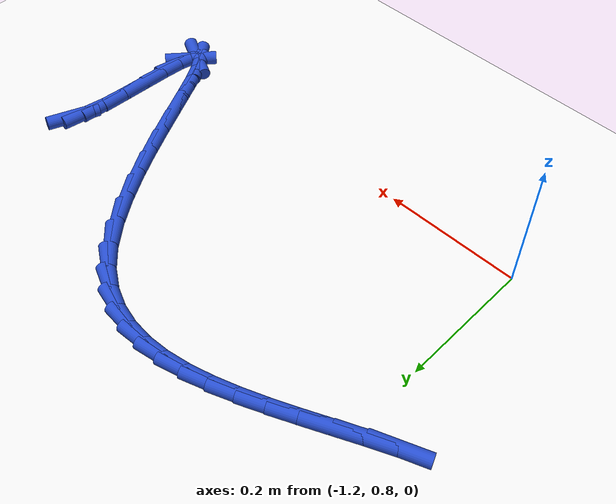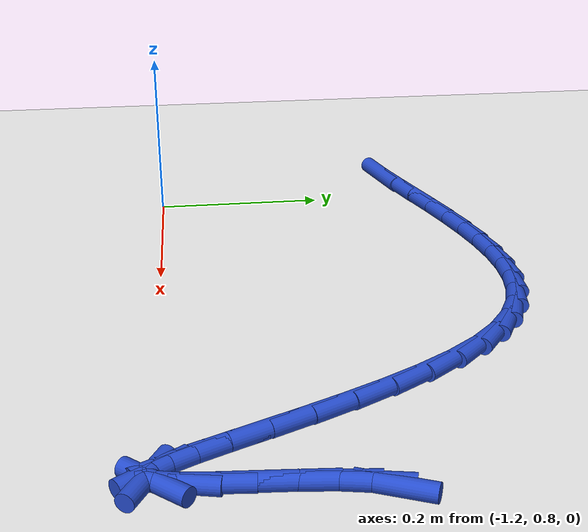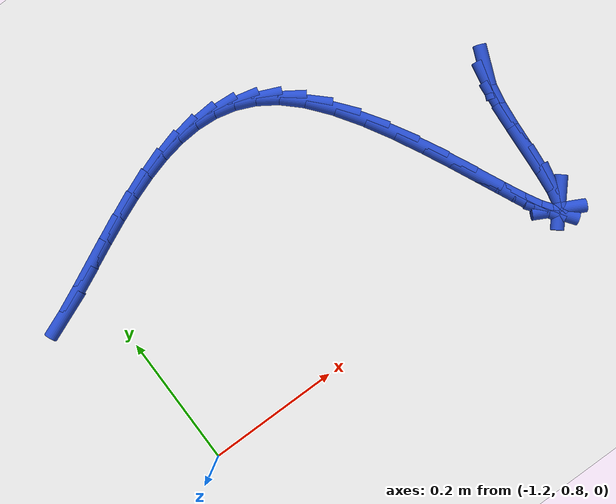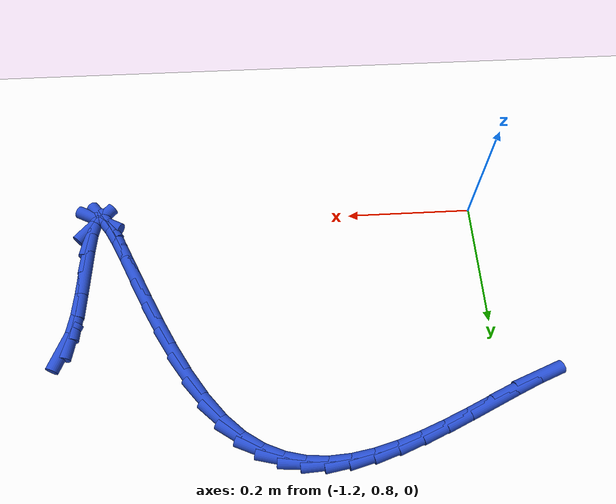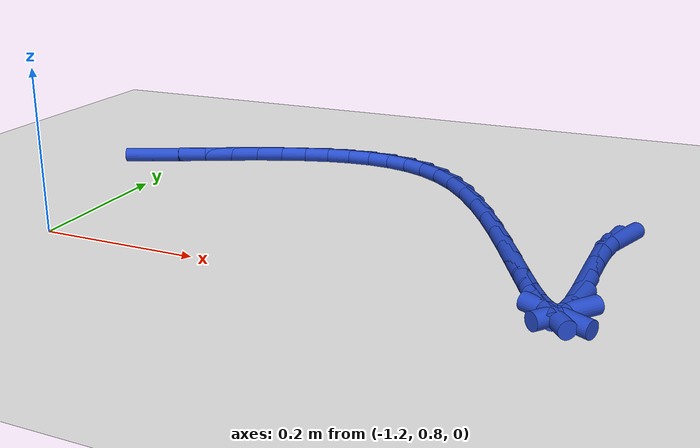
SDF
<sdf version="1.6">
 <world name="default">
  <model name="ground_plane">
   <static>1</static>
   <link name="link">
    <collision name="collision">
     <geometry><plane><normal>0 0 1</normal><size>100 100</size></plane></geometry>
     <surface><friction><ode><mu>100</mu><mu2>50</mu2></ode></friction></surface>
    </collision>
    <visual name="visual">
     <cast_shadows>0</cast_shadows>
     <geometry><plane><normal>0 0 1</normal><size>100 100</size></plane></geometry>
     <material>
      <script><uri>file://media/materials/scripts/gazebo.material</uri><name>Gazebo/WhiteGlow</name></script>
     </material>
    </visual>
   </link>
  </model>
  <model name="line">
   <link name="link_35">
    <pose>-0.5582150459572917 1.0157562047690334 0.01 0 1.57 1.1843040212507043</pose>
    <collision name="collision">
     <geometry><cylinder><radius>0.01</radius><length>0.08</length></cylinder></geometry>
    </collision>
    <visual name="visual">
     <material>
      <script><name>Gazebo/Blue</name><uri>file://media/materials/scripts/gazebo.material</uri></script>
     </material>
     <geometry><cylinder><radius>0.01</radius><length>0.08</length></cylinder></geometry>
    </visual>
   </link>
   <link name="link_36">
    <pose>-0.5662896560022819 0.9959149388131334 0.01 0 1.57 1.3959791009258045</pose>
    <collision name="collision">
     <geometry><cylinder><radius>0.01</radius><length>0.08</length></cylinder></geometry>
    </collision>
    <visual name="visual">
     <material>
      <script><name>Gazebo/Blue</name><uri>file://media/materials/scripts/gazebo.material</uri></script>
     </material>
     <geometry><cylinder><radius>0.01</radius><length>0.08</length></cylinder></geometry>
    </visual>
   </link>
   <link name="link_37">
    <pose>-0.5715789596082179 0.9659675967618204 0.01 0 1.57 1.4814861734477431</pose>
    <collision name="collision">
     <geometry><cylinder><radius>0.01</radius><length>0.08</length></cylinder></geometry>
    </collision>
    <visual name="visual">
     <material>
      <script><name>Gazebo/Blue</name><uri>file://media/materials/scripts/gazebo.material</uri></script>
     </material>
     <geometry><cylinder><radius>0.01</radius><length>0.08</length></cylinder></geometry>
    </visual>
   </link>
   <link name="link_38">
    <pose>-0.5748460427660054 0.9294835913321247 0.01 0 1.57 1.5154804421000168</pose>
    <collision name="collision">
     <geometry><cylinder><radius>0.01</radius><length>0.08</length></cylinder></geometry>
    </collision>
    <visual name="visual">
     <material>
      <script><name>Gazebo/Blue</name><uri>file://media/materials/scripts/gazebo.material</uri></script>
     </material>
     <geometry><cylinder><radius>0.01</radius><length>0.08</length></cylinder></geometry>
    </visual>
   </link>
   <link name="link_39">
    <pose>-0.5769957291643972 0.8906612278775544 0.01 0 1.57 1.518436579236036</pose>
    <collision name="collision">
     <geometry><cylinder><radius>0.01</radius><length>0.08</length></cylinder></geometry>
    </collision>
    <visual name="visual">
     <material>
      <script><name>Gazebo/Blue</name><uri>file://media/materials/scripts/gazebo.material</uri></script>
     </material>
     <geometry><cylinder><radius>0.01</radius><length>0.08</length></cylinder></geometry>
    </visual>
   </link>
   <link name="link_40">
    <pose>-0.5789328424921457 0.8536988117516164 0.01 0 1.57 1.4859195148842421</pose>
    <collision name="collision">
     <geometry><cylinder><radius>0.01</radius><length>0.08</length></cylinder></geometry>
    </collision>
    <visual name="visual">
     <material>
      <script><name>Gazebo/Blue</name><uri>file://media/materials/scripts/gazebo.material</uri></script>
     </material>
     <geometry><cylinder><radius>0.01</radius><length>0.08</length></cylinder></geometry>
    </visual>
   </link>
   <link name="link_41">
    <pose>-0.5815622064380038 0.8227946483078182 0.01 0 1.57 1.3689119356502872</pose>
    <collision name="collision">
     <geometry><cylinder><radius>0.01</radius><length>0.08</length></cylinder></geometry>
    </collision>
    <visual name="visual">
     <material>
      <script><name>Gazebo/Blue</name><uri>file://media/materials/scripts/gazebo.material</uri></script>
     </material>
     <geometry><cylinder><radius>0.01</radius><length>0.08</length></cylinder></geometry>
    </visual>
   </link>
   <link name="link_42">
    <pose>-0.5857884452191734 0.8021458728621471 0.01 0 1.57 0.8580099437129778</pose>
    <collision name="collision">
     <geometry><cylinder><radius>0.01</radius><length>0.08</length></cylinder></geometry>
    </collision>
    <visual name="visual">
     <material>
      <script><name>Gazebo/Blue</name><uri>file://media/materials/scripts/gazebo.material</uri></script>
     </material>
     <geometry><cylinder><radius>0.01</radius><length>0.08</length></cylinder></geometry>
    </visual>
   </link>
   <link name="link_43">
    <pose>-0.5922901960859644 0.7946240520996425 0.01 0 1.57 -0.4823884685321903</pose>
    <collision name="collision">
     <geometry><cylinder><radius>0.01</radius><length>0.08</length></cylinder></geometry>
    </collision>
    <visual name="visual">
     <material>
      <script><name>Gazebo/Blue</name><uri>file://media/materials/scripts/gazebo.material</uri></script>
     </material>
     <geometry><cylinder><radius>0.01</radius><length>0.08</length></cylinder></geometry>
    </visual>
   </link>
   <link name="link_44">
    <pose>-0.601086214118704 0.799230090973471 0.01 0 1.57 -0.93953289880586</pose>
    <collision name="collision">
     <geometry><cylinder><radius>0.01</radius><length>0.08</length></cylinder></geometry>
    </collision>
    <visual name="visual">
     <material>
      <script><name>Gazebo/Blue</name><uri>file://media/materials/scripts/gazebo.material</uri></script>
     </material>
     <geometry><cylinder><radius>0.01</radius><length>0.08</length></cylinder></geometry>
    </visual>
   </link>
   <link name="link_45">
    <pose>-0.6120754555692078 0.8142621921027499 0.01 0 1.57 -1.0674549173226022</pose>
    <collision name="collision">
     <geometry><cylinder><radius>0.01</radius><length>0.08</length></cylinder></geometry>
    </collision>
    <visual name="visual">
     <material>
      <script><name>Gazebo/Blue</name><uri>file://media/materials/scripts/gazebo.material</uri></script>
     </material>
     <geometry><cylinder><radius>0.01</radius><length>0.08</length></cylinder></geometry>
    </visual>
   </link>
   <link name="link_46">
    <pose>-0.6251568766892915 0.8380185581065956 0.01 0 1.57 -1.1154183656569396</pose>
    <collision name="collision">
     <geometry><cylinder><radius>0.01</radius><length>0.08</length></cylinder></geometry>
    </collision>
    <visual name="visual">
     <material>
      <script><name>Gazebo/Blue</name><uri>file://media/materials/scripts/gazebo.material</uri></script>
     </material>
     <geometry><cylinder><radius>0.01</radius><length>0.08</length></cylinder></geometry>
    </visual>
   </link>
   <link name="link_47">
    <pose>-0.6402294337307702 0.8687973916041248 0.01 0 1.57 -1.131528865879488</pose>
    <collision name="collision">
     <geometry><cylinder><radius>0.01</radius><length>0.08</length></cylinder></geometry>
    </collision>
    <visual name="visual">
     <material>
      <script><name>Gazebo/Blue</name><uri>file://media/materials/scripts/gazebo.material</uri></script>
     </material>
     <geometry><cylinder><radius>0.01</radius><length>0.08</length></cylinder></geometry>
    </visual>
   </link>
   <link name="link_48">
    <pose>-0.6571920829454594 0.9048968952144543 0.01 0 1.57 -1.1297033609013452</pose>
    <collision name="collision">
     <geometry><cylinder><radius>0.01</radius><length>0.08</length></cylinder></geometry>
    </collision>
    <visual name="visual">
     <material>
      <script><name>Gazebo/Blue</name><uri>file://media/materials/scripts/gazebo.material</uri></script>
     </material>
     <geometry><cylinder><radius>0.01</radius><length>0.08</length></cylinder></geometry>
    </visual>
   </link>
   <link name="link_49">
    <pose>-0.6759437805851745 0.9446152715567006 0.01 0 1.57 -1.1144385572703608</pose>
    <collision name="collision">
     <geometry><cylinder><radius>0.01</radius><length>0.08</length></cylinder></geometry>
    </collision>
    <visual name="visual">
     <material>
      <script><name>Gazebo/Blue</name><uri>file://media/materials/scripts/gazebo.material</uri></script>
     </material>
     <geometry><cylinder><radius>0.01</radius><length>0.08</length></cylinder></geometry>
    </visual>
   </link>
   <link name="link_50">
    <pose>-0.6963834829017308 0.9862507232499802 0.01 0 1.57 -1.0863190821722675</pose>
    <collision name="collision">
     <geometry><cylinder><radius>0.01</radius><length>0.08</length></cylinder></geometry>
    </collision>
    <visual name="visual">
     <material>
      <script><name>Gazebo/Blue</name><uri>file://media/materials/scripts/gazebo.material</uri></script>
     </material>
     <geometry><cylinder><radius>0.01</radius><length>0.08</length></cylinder></geometry>
    </visual>
   </link>
   <link name="link_51">
    <pose>-0.7184101461469438 1.0281014529134096 0.01 0 1.57 -1.0433359493110503</pose>
    <collision name="collision">
     <geometry><cylinder><radius>0.01</radius><length>0.08</length></cylinder></geometry>
    </collision>
    <visual name="visual">
     <material>
      <script><name>Gazebo/Blue</name><uri>file://media/materials/scripts/gazebo.material</uri></script>
     </material>
     <geometry><cylinder><radius>0.01</radius><length>0.08</length></cylinder></geometry>
    </visual>
   </link>
   <link name="link_52">
    <pose>-0.7419227265726289 1.0684656631661062 0.01 0 1.57 -0.9806825858684807</pose>
    <collision name="collision">
     <geometry><cylinder><radius>0.01</radius><length>0.08</length></cylinder></geometry>
    </collision>
    <visual name="visual">
     <material>
      <script><name>Gazebo/Blue</name><uri>file://media/materials/scripts/gazebo.material</uri></script>
     </material>
     <geometry><cylinder><radius>0.01</radius><length>0.08</length></cylinder></geometry>
    </visual>
   </link>
   <link name="link_53">
    <pose>-0.7668201804306017 1.1056415566271864 0.01 0 1.57 -0.8894303683942326</pose>
    <collision name="collision">
     <geometry><cylinder><radius>0.01</radius><length>0.08</length></cylinder></geometry>
    </collision>
    <visual name="visual">
     <material>
      <script><name>Gazebo/Blue</name><uri>file://media/materials/scripts/gazebo.material</uri></script>
     </material>
     <geometry><cylinder><radius>0.01</radius><length>0.08</length></cylinder></geometry>
    </visual>
   </link>
   <link name="link_54">
    <pose>-0.7930014639726775 1.1379273359157664 0.01 0 1.57 -0.7563948264282714</pose>
    <collision name="collision">
     <geometry><cylinder><radius>0.01</radius><length>0.08</length></cylinder></geometry>
    </collision>
    <visual name="visual">
     <material>
      <script><name>Gazebo/Blue</name><uri>file://media/materials/scripts/gazebo.material</uri></script>
     </material>
     <geometry><cylinder><radius>0.01</radius><length>0.08</length></cylinder></geometry>
    </visual>
   </link>
   <link name="link_55">
    <pose>-0.8203677303846755 1.163750498682871 0.01 0 1.57 -0.5914955888662017</pose>
    <collision name="collision">
     <geometry><cylinder><radius>0.01</radius><length>0.08</length></cylinder></geometry>
    </collision>
    <visual name="visual">
     <material>
      <script><name>Gazebo/Blue</name><uri>file://media/materials/scripts/gazebo.material</uri></script>
     </material>
     <geometry><cylinder><radius>0.01</radius><length>0.08</length></cylinder></geometry>
    </visual>
   </link>
   <link name="link_56">
    <pose>-0.8488428914824494 1.1828779445785118 0.01 0 1.57 -0.4145488062492456</pose>
    <collision name="collision">
     <geometry><cylinder><radius>0.01</radius><length>0.08</length></cylinder></geometry>
    </collision>
    <visual name="visual">
     <material>
      <script><name>Gazebo/Blue</name><uri>file://media/materials/scripts/gazebo.material</uri></script>
     </material>
     <geometry><cylinder><radius>0.01</radius><length>0.08</length></cylinder></geometry>
    </visual>
   </link>
   <link name="link_57">
    <pose>-0.8783643211797995 1.1958688512093798 0.01 0 1.57 -0.23872295142183042</pose>
    <collision name="collision">
     <geometry><cylinder><radius>0.01</radius><length>0.08</length></cylinder></geometry>
    </collision>
    <visual name="visual">
     <material>
      <script><name>Gazebo/Blue</name><uri>file://media/materials/scripts/gazebo.material</uri></script>
     </material>
     <geometry><cylinder><radius>0.01</radius><length>0.08</length></cylinder></geometry>
    </visual>
   </link>
   <link name="link_58">
    <pose>-0.9088695687757763 1.2032927180404345 0.01 0 1.57 -0.07705324757670078</pose>
    <collision name="collision">
     <geometry><cylinder><radius>0.01</radius><length>0.08</length></cylinder></geometry>
    </collision>
    <visual name="visual">
     <material>
      <script><name>Gazebo/Blue</name><uri>file://media/materials/scripts/gazebo.material</uri></script>
     </material>
     <geometry><cylinder><radius>0.01</radius><length>0.08</length></cylinder></geometry>
    </visual>
   </link>
   <link name="link_59">
    <pose>-0.9402961835694289 1.2057190445366324 0.01 0 1.57 0.06192109284528416</pose>
    <collision name="collision">
     <geometry><cylinder><radius>0.01</radius><length>0.08</length></cylinder></geometry>
    </collision>
    <visual name="visual">
     <material>
      <script><name>Gazebo/Blue</name><uri>file://media/materials/scripts/gazebo.material</uri></script>
     </material>
     <geometry><cylinder><radius>0.01</radius><length>0.08</length></cylinder></geometry>
    </visual>
   </link>
   <link name="link_60">
    <pose>-0.9725817148598082 1.203717330162931 0.01 0 1.57 0.17532456697047252</pose>
    <collision name="collision">
     <geometry><cylinder><radius>0.01</radius><length>0.08</length></cylinder></geometry>
    </collision>
    <visual name="visual">
     <material>
      <script><name>Gazebo/Blue</name><uri>file://media/materials/scripts/gazebo.material</uri></script>
     </material>
     <geometry><cylinder><radius>0.01</radius><length>0.08</length></cylinder></geometry>
    </visual>
   </link>
   <link name="link_61">
    <pose>-1.005663711945963 1.1978570743842876 0.01 0 1.57 0.264234743004453</pose>
    <collision name="collision">
     <geometry><cylinder><radius>0.01</radius><length>0.08</length></cylinder></geometry>
    </collision>
    <visual name="visual">
     <material>
      <script><name>Gazebo/Blue</name><uri>file://media/materials/scripts/gazebo.material</uri></script>
     </material>
     <geometry><cylinder><radius>0.01</radius><length>0.08</length></cylinder></geometry>
    </visual>
   </link>
   <link name="link_62">
    <pose>-1.0394797241269431 1.1887077766656597 0.01 0 1.57 0.3314522249867367</pose>
    <collision name="collision">
     <geometry><cylinder><radius>0.01</radius><length>0.08</length></cylinder></geometry>
    </collision>
    <visual name="visual">
     <material>
      <script><name>Gazebo/Blue</name><uri>file://media/materials/scripts/gazebo.material</uri></script>
     </material>
     <geometry><cylinder><radius>0.01</radius><length>0.08</length></cylinder></geometry>
    </visual>
   </link>
   <link name="link_63">
    <pose>-1.0739673007017994 1.1768389364720049 0.01 0 1.57 0.38002011572774397</pose>
    <collision name="collision">
     <geometry><cylinder><radius>0.01</radius><length>0.08</length></cylinder></geometry>
    </collision>
    <visual name="visual">
     <material>
      <script><name>Gazebo/Blue</name><uri>file://media/materials/scripts/gazebo.material</uri></script>
     </material>
     <geometry><cylinder><radius>0.01</radius><length>0.08</length></cylinder></geometry>
    </visual>
   </link>
   <link name="link_64">
    <pose>-1.1090639909695805 1.1628200532682806 0.01 0 1.57 0.4125390015599552</pose>
    <collision name="collision">
     <geometry><cylinder><radius>0.01</radius><length>0.08</length></cylinder></geometry>
    </collision>
    <visual name="visual">
     <material>
      <script><name>Gazebo/Blue</name><uri>file://media/materials/scripts/gazebo.material</uri></script>
     </material>
     <geometry><cylinder><radius>0.01</radius><length>0.08</length></cylinder></geometry>
    </visual>
   </link>
   <link name="link_65">
    <pose>-1.144707344229337 1.1472206265194442 0.01 0 1.57 0.43095117782811987</pose>
    <collision name="collision">
     <geometry><cylinder><radius>0.01</radius><length>0.08</length></cylinder></geometry>
    </collision>
    <visual name="visual">
     <material>
      <script><name>Gazebo/Blue</name><uri>file://media/materials/scripts/gazebo.material</uri></script>
     </material>
     <geometry><cylinder><radius>0.01</radius><length>0.08</length></cylinder></geometry>
    </visual>
   </link>
   <link name="link_66">
    <pose>-1.180834909780119 1.130610155690453 0.01 0 1.57 0.4360113877469931</pose>
    <collision name="collision">
     <geometry><cylinder><radius>0.01</radius><length>0.08</length></cylinder></geometry>
    </collision>
    <visual name="visual">
     <material>
      <script><name>Gazebo/Blue</name><uri>file://media/materials/scripts/gazebo.material</uri></script>
     </material>
     <geometry><cylinder><radius>0.01</radius><length>0.08</length></cylinder></geometry>
    </visual>
   </link>
   <link name="link_67">
    <pose>-1.217366739569725 1.1135893548414888 0.01 0 1.57 0.4201901136541147</pose>
    <collision name="collision">
     <geometry><cylinder><radius>0.01</radius><length>0.08</length></cylinder></geometry>
    </collision>
    <visual name="visual">
     <material>
      <script><name>Gazebo/Blue</name><uri>file://media/materials/scripts/gazebo.material</uri></script>
     </material>
     <geometry><cylinder><radius>0.01</radius><length>0.08</length></cylinder></geometry>
    </visual>
   </link>
   <link name="link_68">
    <pose>-1.2539513632373998 1.0972433232882244 0.01 0 1.57 0.37512915570288063</pose>
    <collision name="collision">
     <geometry><cylinder><radius>0.01</radius><length>0.08</length></cylinder></geometry>
    </collision>
    <visual name="visual">
     <material>
      <script><name>Gazebo/Blue</name><uri>file://media/materials/scripts/gazebo.material</uri></script>
     </material>
     <geometry><cylinder><radius>0.01</radius><length>0.08</length></cylinder></geometry>
    </visual>
   </link>
  </model>
 </world>
</sdf>
